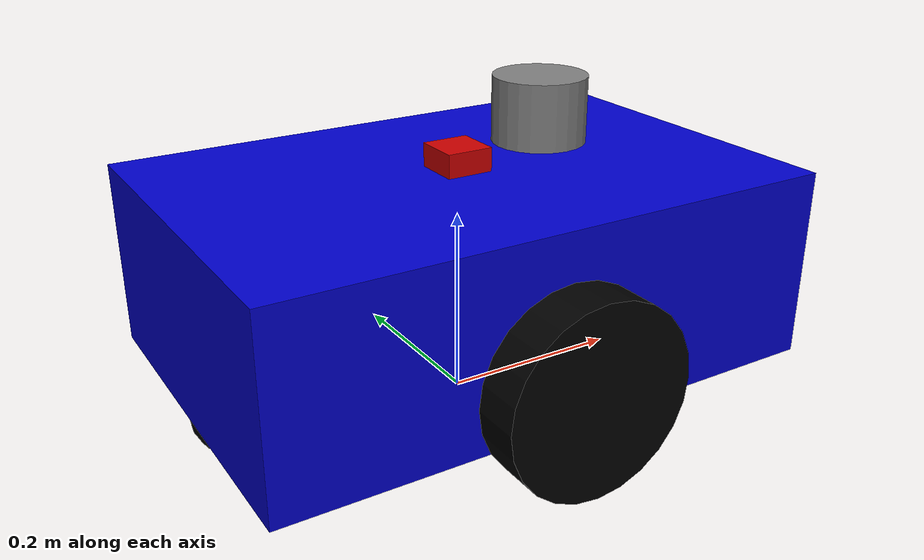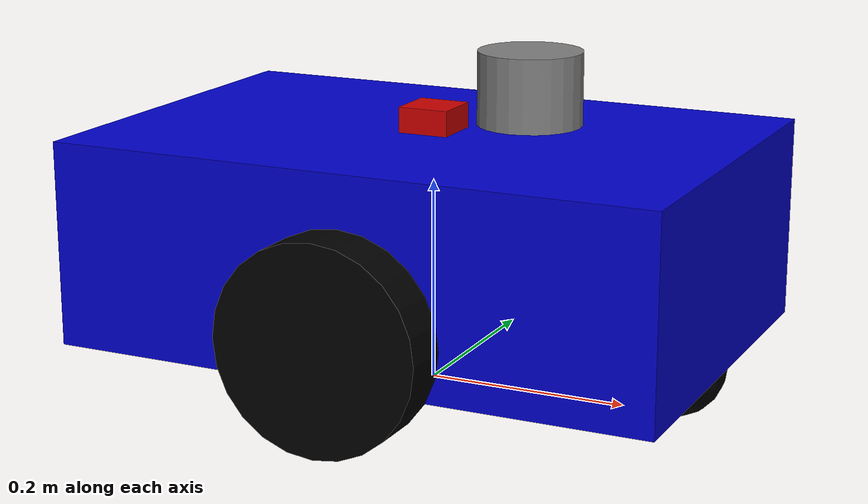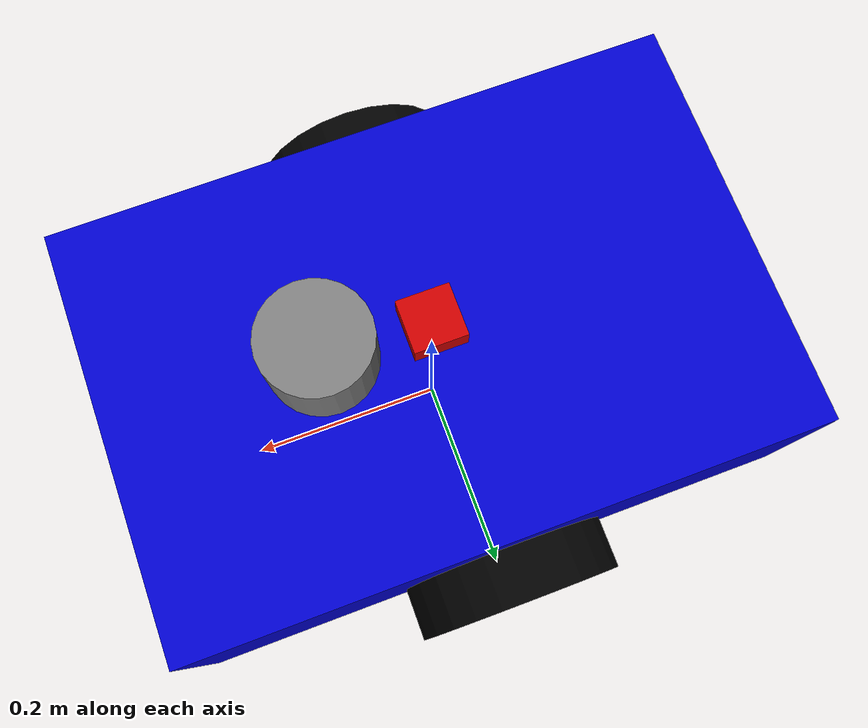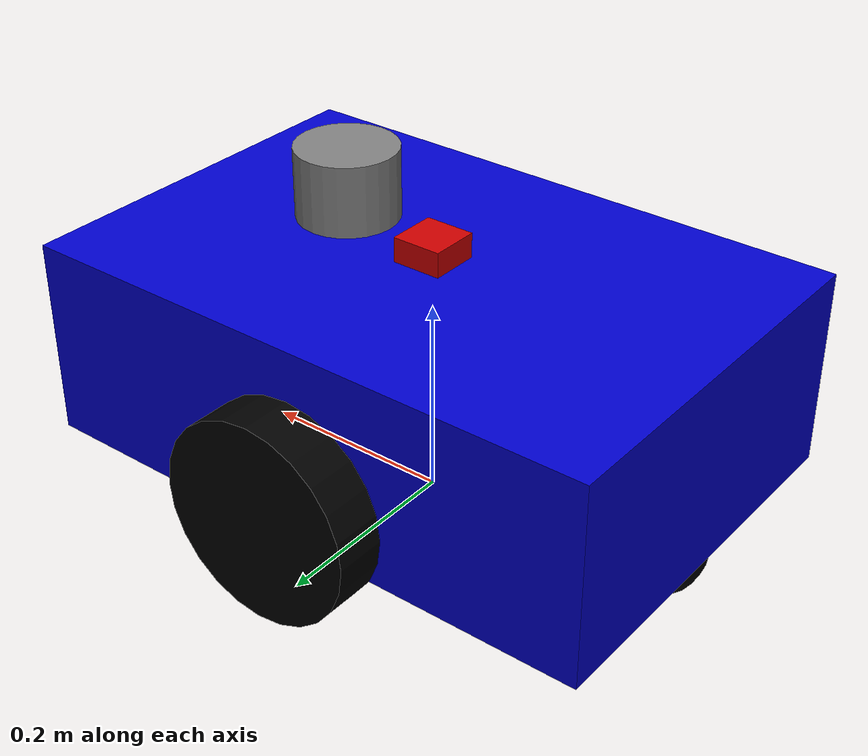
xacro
<?xml version="1.0"?>
<robot xmlns:xacro="http://www.ros.org/wiki/xacro" name="tunnel_robot">

  <link name="base_footprint"/>

  <joint name="base_joint" type="fixed">
    <parent link="base_footprint"/>
    <child link="base_link"/>
    <origin xyz="0 0 0.15" rpy="0 0 0"/>
  </joint>

  <link name="base_link">
    <visual>
      <geometry>
        <box size="0.6 0.4 0.2"/>
      </geometry>
      <material name="blue">
        <color rgba="0 0 0.8 1"/>
      </material>
    </visual>
    <collision>
      <geometry>
        <box size="0.6 0.4 0.2"/>
      </geometry>
    </collision>
    <inertial>
      <mass value="10.0"/>
      <inertia ixx="0.1" ixy="0" ixz="0" iyy="0.1" iyz="0" izz="0.1"/>
    </inertial>
  </link>

  <!-- Left Wheel -->
  <joint name="left_wheel_joint" type="continuous">
    <parent link="base_link"/>
    <child link="left_wheel"/>
    <origin xyz="0 0.225 -0.05" rpy="-1.5708 0 0"/>
    <axis xyz="0 0 1"/>
  </joint>

  <link name="left_wheel">
    <visual>
      <geometry>
        <cylinder radius="0.1" length="0.05"/>
      </geometry>
      <material name="black">
        <color rgba="0 0 0 1"/>
      </material>
    </visual>
    <collision>
      <geometry>
        <cylinder radius="0.1" length="0.05"/>
      </geometry>
    </collision>
    <inertial>
      <mass value="1.0"/>
      <inertia ixx="0.01" ixy="0" ixz="0" iyy="0.01" iyz="0" izz="0.01"/>
    </inertial>
  </link>

  <!-- Right Wheel -->
  <joint name="right_wheel_joint" type="continuous">
    <parent link="base_link"/>
    <child link="right_wheel"/>
    <origin xyz="0 -0.225 -0.05" rpy="-1.5708 0 0"/>
    <axis xyz="0 0 1"/>
  </joint>

  <link name="right_wheel">
    <visual>
      <geometry>
        <cylinder radius="0.1" length="0.05"/>
      </geometry>
      <material name="black"/>
    </visual>
    <collision>
      <geometry>
        <cylinder radius="0.1" length="0.05"/>
      </geometry>
    </collision>
    <inertial>
      <mass value="1.0"/>
      <inertia ixx="0.01" ixy="0" ixz="0" iyy="0.01" iyz="0" izz="0.01"/>
    </inertial>
  </link>

  <!-- Front Caster -->
  <joint name="front_caster_joint" type="fixed">
    <parent link="base_link"/>
    <child link="front_caster"/>
    <origin xyz="0.25 0 -0.10" rpy="0 0 0"/>
  </joint>

  <link name="front_caster">
    <visual>
      <geometry>
        <sphere radius="0.05"/>
      </geometry>
      <material name="black"/>
    </visual>
    <collision>
      <geometry>
        <sphere radius="0.05"/>
      </geometry>
    </collision>
    <inertial>
      <mass value="0.5"/>
      <inertia ixx="0.001" ixy="0" ixz="0" iyy="0.001" iyz="0" izz="0.001"/>
    </inertial>
  </link>

  <!-- Back Caster -->
  <joint name="back_caster_joint" type="fixed">
    <parent link="base_link"/>
    <child link="back_caster"/>
    <origin xyz="-0.25 0 -0.10" rpy="0 0 0"/>
  </joint>

  <link name="back_caster">
    <visual>
      <geometry>
        <sphere radius="0.05"/>
      </geometry>
      <material name="black"/>
    </visual>
    <collision>
      <geometry>
        <sphere radius="0.05"/>
      </geometry>
    </collision>
    <inertial>
      <mass value="0.5"/>
      <inertia ixx="0.001" ixy="0" ixz="0" iyy="0.001" iyz="0" izz="0.001"/>
    </inertial>
  </link>

  <!-- IMU Link -->
  <joint name="imu_joint" type="fixed">
    <parent link="base_link"/>
    <child link="imu_link"/>
    <origin xyz="0 0 0.1" rpy="0 0 0"/>
  </joint>

  <link name="imu_link">
    <visual>
      <geometry>
        <box size="0.05 0.05 0.05"/>
      </geometry>
      <material name="red">
        <color rgba="0.8 0 0 1"/>
      </material>
    </visual>
  </link>

  <!-- LiDAR Link -->
  <joint name="lidar_joint" type="fixed">
    <parent link="base_link"/>
    <child link="lidar_link"/>
    <origin xyz="0.1 0 0.15" rpy="0 0 0"/>
  </joint>

  <link name="lidar_link">
    <visual>
      <geometry>
        <cylinder radius="0.05" length="0.07"/>
      </geometry>
      <material name="grey">
        <color rgba="0.5 0.5 0.5 1"/>
      </material>
    </visual>
  </link>

  <!-- Caster friction fix -->
  <gazebo reference="front_caster">
    <mu1>0.0</mu1>
    <mu2>0.0</mu2>
  </gazebo>

  <gazebo reference="back_caster">
    <mu1>0.0</mu1>
    <mu2>0.0</mu2>
  </gazebo>

  <!-- Differential Drive Plugin -->
  <gazebo>
    <plugin name="diff_drive" filename="libgazebo_ros_diff_drive.so">
      <left_joint>left_wheel_joint</left_joint>
      <right_joint>right_wheel_joint</right_joint>
      <wheel_separation>0.45</wheel_separation>
      <wheel_diameter>0.2</wheel_diameter>
      <max_wheel_torque>20</max_wheel_torque>
      <max_wheel_acceleration>1.0</max_wheel_acceleration>
      <command_topic>cmd_vel</command_topic>
      <publish_odom>true</publish_odom>
      <publish_odom_tf>true</publish_odom_tf>
      <publish_wheel_tf>true</publish_wheel_tf>
      <odometry_frame>odom</odometry_frame>
      <robot_base_frame>base_footprint</robot_base_frame>
    </plugin>
  </gazebo>

  <!-- IMU Plugin -->
  <gazebo reference="imu_link">
    <sensor name="imu_sensor" type="imu">
      <always_on>true</always_on>
      <update_rate>100</update_rate>
      <imu>
        <angular_velocity>
          <x>
            <noise type="gaussian">
              <mean>0.0</mean>
              <stddev>0.0</stddev>
            </noise>
          </x>
          <y>
            <noise type="gaussian">
              <mean>0.0</mean>
              <stddev>0.0</stddev>
            </noise>
          </y>
          <z>
            <noise type="gaussian">
              <mean>0.0</mean>
              <stddev>0.0</stddev>
            </noise>
          </z>
        </angular_velocity>
        <linear_acceleration>
          <x>
            <noise type="gaussian">
              <mean>0.0</mean>
              <stddev>0.0</stddev>
            </noise>
          </x>
          <y>
            <noise type="gaussian">
              <mean>0.0</mean>
              <stddev>0.0</stddev>
            </noise>
          </y>
          <z>
            <noise type="gaussian">
              <mean>0.0</mean>
              <stddev>0.0</stddev>
            </noise>
          </z>
        </linear_acceleration>
      </imu>
      <plugin name="imu_plugin" filename="libgazebo_ros_imu_sensor.so">
        <ros>
          <remapping>~/out:=imu/data</remapping>
        </ros>
        <initial_orientation_as_reference>true</initial_orientation_as_reference>
        <frame_name>imu_link</frame_name>
        <update_rate>100</update_rate>
        <gaussian_noise>0.0</gaussian_noise>
      </plugin>
    </sensor>
  </gazebo>

  <!-- LiDAR Plugin -->
  <gazebo reference="lidar_link">
    <sensor name="lidar" type="ray">
      <always_on>true</always_on>
      <update_rate>10</update_rate>
      <ray>
        <scan>
          <horizontal>
            <samples>360</samples>
            <resolution>1</resolution>
            <min_angle>-3.14159</min_angle>
            <max_angle>3.14159</max_angle>
          </horizontal>
          <vertical>
            <samples>16</samples>
            <resolution>1</resolution>
            <min_angle>-0.2618</min_angle>
            <max_angle>0.2618</max_angle>
          </vertical>
        </scan>
        <range>
          <min>0.3</min>
          <max>100.0</max>
          <resolution>0.01</resolution>
        </range>
      </ray>
      <plugin name="lidar_plugin" filename="libgazebo_ros_ray_sensor.so">
        <ros>
          <remapping>~/out:=points</remapping>
        </ros>
        <output_type>sensor_msgs/PointCloud2</output_type>
        <frame_name>lidar_link</frame_name>
      </plugin>
    </sensor>
  </gazebo>

</robot>
